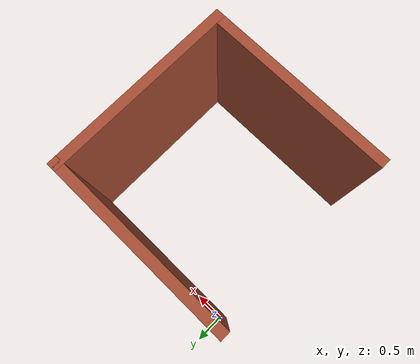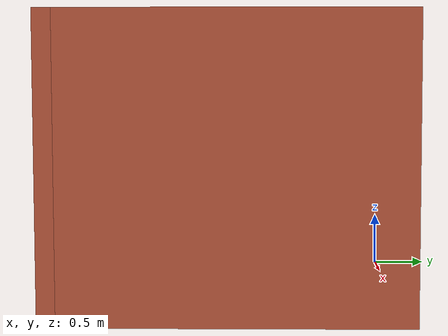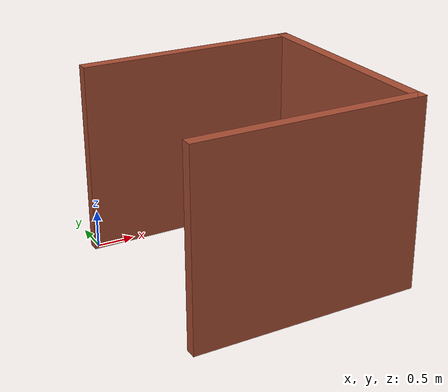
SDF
<?xml version='1.0'?>
<sdf version='1.7'>
  <model name='tomato_fram'>
    <pose>1.425 -1.425 0 0 -0 0</pose>
    <link name='Wall_10'>
      <collision name='Wall_10_Collision'>
        <geometry>
          <box>
            <size>3 0.15 2.5</size>
          </box>
        </geometry>
        <pose>0 0 1.25 0 -0 0</pose>
      </collision>
      <visual name='Wall_10_Visual'>
        <pose>0 0 1.25 0 -0 0</pose>
        <geometry>
          <box>
            <size>3 0.15 2.5</size>
          </box>
        </geometry>
        <material>
          <script>
            <uri>file://media/materials/scripts/gazebo.material</uri>
            <name>Gazebo/Bricks</name>
          </script>
          <ambient>1 1 1 1</ambient>
        </material>
        <meta>
          <layer>0</layer>
        </meta>
      </visual>
      <pose>-0 -1.425 0 0 -0 3.14159</pose>
    </link>
    <link name='Wall_5'>
      <collision name='Wall_5_Collision'>
        <geometry>
          <box>
            <size>3 0.15 2.5</size>
          </box>
        </geometry>
        <pose>0 0 1.25 0 -0 0</pose>
      </collision>
      <visual name='Wall_5_Visual'>
        <pose>0 0 1.25 0 -0 0</pose>
        <geometry>
          <box>
            <size>3 0.15 2.5</size>
          </box>
        </geometry>
        <material>
          <script>
            <uri>file://media/materials/scripts/gazebo.material</uri>
            <name>Gazebo/Bricks</name>
          </script>
          <ambient>1 1 1 1</ambient>
        </material>
        <meta>
          <layer>0</layer>
        </meta>
      </visual>
      <pose>-0 1.425 0 0 -0 0</pose>
    </link>
    <link name='Wall_9'>
      <collision name='Wall_9_Collision'>
        <geometry>
          <box>
            <size>3 0.15 2.5</size>
          </box>
        </geometry>
        <pose>0 0 1.25 0 -0 0</pose>
      </collision>
      <visual name='Wall_9_Visual'>
        <pose>0 0 1.25 0 -0 0</pose>
        <geometry>
          <box>
            <size>3 0.15 2.5</size>
          </box>
        </geometry>
        <material>
          <script>
            <uri>file://media/materials/scripts/gazebo.material</uri>
            <name>Gazebo/Bricks</name>
          </script>
          <ambient>1 1 1 1</ambient>
        </material>
        <meta>
          <layer>0</layer>
        </meta>
      </visual>
      <pose>1.425 0 0 0 -0 -1.5708</pose>
    </link>
    <static>1</static>
  </model>
</sdf>
